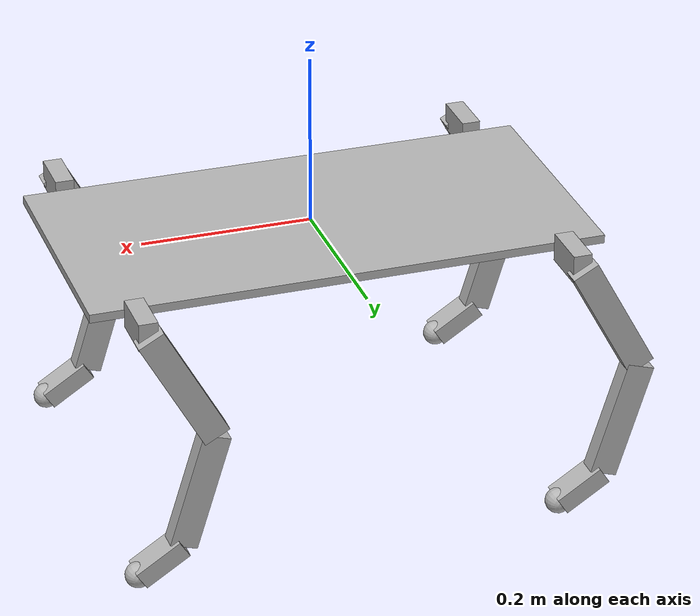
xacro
<?xml version="1.0"?>
<robot xmlns:xacro="http://ros.org/wiki/xacro" name="cuadrupedo">

    <!-- parameters -->
    <xacro:property name="pi" value="3.1415926535897931" />
    <xacro:property name="long_cuerpo_x" value="0.5" />
    <xacro:property name="long_cuerpo_y" value="0.3" />
    <xacro:property name="long_cuerpo_z" value="0.01" />
    <xacro:property name="long_coxa" value="0.05893" />
    <xacro:property name="long_femur" value="0.15" />
    <xacro:property name="long_tibia" value="0.14" />
    <xacro:property name="long_tarsus" value="0.06" />

    <xacro:property name="masa_base" value="10" />
    <xacro:property name="masa_tarsus" value="0.2" />
    <xacro:property name="masa_tibia" value="0.2" />
    <xacro:property name="masa_femur" value="0.2" />
    <xacro:property name="masa_coxa" value="0.2" />

    <macro name="box_inertia" params="m x y z">
    <inertia  ixx="${500*m*(y*y+z*z)/12}" ixy = "0" ixz = "0"
              iyy="${500*m*(x*x+z*z)/12}" iyz = "0"
              izz="${500*m*(x*x+z*z)/12}" />
    </macro>

    <!-- Build the body frame -->
    <link name="map" />

    <joint name="base_joint" type="fixed">
        <parent link="map" />
        <child link="base_link" />
        <origin xyz="0 0 0" rpy="0 0 0" />
    </joint>
    <link name="base_link">
		<inertial>
			<origin    xyz="0 0 0" rpy="0 0 0" />
			<mass value="${masa_base}" />
			<box_inertia  m="${masa_base}" x="${long_cuerpo_x}" y="${long_cuerpo_y}" z="${long_cuerpo_z}"/>
		</inertial>
        <visual>
        	<origin    xyz="0 0 0" rpy="0 0 0" />
        	<geometry>
        		<box size="${1.2*long_cuerpo_x} ${long_cuerpo_y} ${long_cuerpo_z}"/>
      		</geometry>
            <material name="">
            	<color rgba="0.7 0.7 0.7 1" />
            </material>
		</visual>
	    <collision>
     	   <origin    xyz="0 0 0" rpy="0 0 0" />
           <geometry>
			<box size="${long_cuerpo_x} ${long_cuerpo_y} 0.004"/>
           </geometry>
		</collision>
    </link>

    <!-- Joint properties -->
    <xacro:property name="lim_joint_inferior" value="-${3.14}" />
    <xacro:property name="lim_joint_superior" value="${3.14}" />
    <xacro:property name="max_esfu" value="10000" />
    <xacro:property name="max_vel" value="100" />

    <!-- Leg macro -->
    <xacro:macro name="leg" params="side position x y angle axis izq">

        <!-- leg position -->
    	<joint name="leg_center_joint_${side}${position}" type="fixed">
            <origin xyz="${x} ${y} 0" rpy="0 0 0" />
            <parent link="base_link" />
            <child link="leg_center_${side}${position}" />
        </joint>

        <link name="leg_center_${side}${position}">
			<inertial>
				<origin    xyz="0 0 0" rpy="0 0 0" />
				<mass value="${masa_base}" />
				<box_inertia  m="${masa_base}" x="${long_cuerpo_x}" y="${long_cuerpo_y}" z="${long_cuerpo_z}"/>
			</inertial>
		</link>

        <!-- coxa -->

		<xacro:if value="${izq}">
			<joint name="coxa_joint_${side}${position}" type="revolute">
            <origin xyz="0 0 0" rpy="0 0 ${-1*angle}" />
            <parent link="leg_center_${side}${position}" />
            <child link="coxa_${side}${position}" />
            <axis xyz="0 ${axis} 0" />
            <limit lower="${lim_joint_inferior}" upper="${lim_joint_superior}" effort="${max_esfu}" velocity="${max_vel}" />
        </joint>
		</xacro:if>

		<xacro:unless value="${izq}">
			<joint name="coxa_joint_${side}${position}" type="revolute">
            <origin xyz="0 0 0" rpy="0 0 ${angle}" />
            <parent link="leg_center_${side}${position}" />
            <child link="coxa_${side}${position}" />
            <axis xyz="0 ${axis} 0" />
            <limit lower="${lim_joint_inferior}" upper="${lim_joint_superior}" effort="${max_esfu}" velocity="${max_vel}" />
        </joint>
		</xacro:unless>

		<transmission name="coxa_joint_${side}${position}_Transmission">
			<type>transmission_interface/SimpleTransmission</type>
			<joint name="coxa_joint_${side}${position}">
				<hardwareInterface>EffortJointInterface</hardwareInterface>
			</joint>
			<actuator name="coxa_joint_${side}${position}_Motor">
				<hardwareInterface>EffortJointInterface</hardwareInterface>
				<mechanicalReduction>1</mechanicalReduction>
			</actuator>
		</transmission>
        <link name="coxa_${side}${position}">
	   		<inertial>
      			<origin xyz="0 0 0" rpy="0 0 0" />
      			<mass value="${masa_coxa}" />
      			<box_inertia  m="${masa_coxa}" x="${2*long_coxa}" y="0.022" z="0.0325"/>
    		</inertial>
            <visual>
                <origin xyz="${long_coxa/2} 0 0" rpy="0 0 0" />
            	<geometry>
                    <box size="${long_coxa} 0.022 0.0325" />
                </geometry>
                <material name="">
                    <color rgba="0.7 0.7 0.7 1" />
                </material>
            </visual>
			<collision>
 	           <origin xyz="${long_coxa/2} 0 0" rpy="0 0 0" />
               <geometry>
                    <box size="${long_coxa} 0.022 0.0325" />
               </geometry>
 		    </collision>
		</link>

        <!-- femur -->
		<xacro:if value="${izq}">
			<joint name="femur_joint_${side}${position}" type="revolute">
            <origin xyz="${long_coxa} 0 0" rpy="${pi/2+0.5} 0.0 0" />
            <parent link="coxa_${side}${position}" />
            <child link="femur_${side}${position}" />
            <axis xyz="${axis} 0 0" />
            <limit lower="${lim_joint_inferior}" upper="${lim_joint_superior}" effort="${max_esfu}" velocity="${max_vel}" />
        </joint>
		</xacro:if>

		<xacro:unless value="${izq}">
			<joint name="femur_joint_${side}${position}" type="revolute">
            <origin xyz="${long_coxa} 0 0" rpy="${pi/2-0.5} 0.0 0" />
            <parent link="coxa_${side}${position}" />
            <child link="femur_${side}${position}" />
            <axis xyz="${axis} 0 0" />
            <limit lower="${lim_joint_inferior}" upper="${lim_joint_superior}" effort="${max_esfu}" velocity="${max_vel}" />
        </joint>
		</xacro:unless>
		<transmission name="femur_joint_${side}${position}_Transmission">
			<type>transmission_interface/SimpleTransmission</type>
			<joint name="femur_joint_${side}${position}">
				<hardwareInterface>EffortJointInterface</hardwareInterface>
			</joint>
			<actuator name="femur_joint_${side}${position}_Motor">
				<hardwareInterface>EffortJointInterface</hardwareInterface>
				<mechanicalReduction>1</mechanicalReduction>
			</actuator>
		</transmission>
        <link name="femur_${side}${position}">
	   		<inertial>
      			<origin xyz="0 -${long_femur/2} 0" rpy="0 0 0" />
      			<mass value="${masa_femur}" />
      			<box_inertia  m="${masa_femur}" x="0.022" y="${long_femur}" z="0.0325"/>
    		</inertial>
            <visual>
                <origin xyz="0 -${long_femur/2} 0" rpy="0 0 0" />
                <geometry>
                    <box size="0.022 ${long_femur} 0.0325" />
                </geometry>
                <material name="">
                    <color rgba="0.7 0.7 0.7 1" />
                </material>
            </visual>
	    	<collision>
           		<origin xyz="0 -${long_femur/2} 0" rpy="0 0 0" />
                <geometry>
            	    <box size="0.022 ${long_femur} 0.0325" />
                </geometry>
      		</collision>
		</link>

        <!-- tibia -->
		<xacro:if value="${izq}">
			<joint name="tibia_joint_${side}${position}" type="revolute">
            <origin xyz="0 -${long_femur} 0" rpy="0 -0.8 -${pi/2}" />
            <parent link="femur_${side}${position}" />
            <child link="tibia_${side}${position}" />
            <axis xyz="0 ${axis} 0" />
            <limit lower="${lim_joint_inferior}" upper="${lim_joint_superior}" effort="${max_esfu}" velocity="${max_vel}" />
        </joint>
		</xacro:if>

		<xacro:unless value="${izq}">
			<joint name="tibia_joint_${side}${position}" type="revolute">
            <origin xyz="0 -${long_femur} 0" rpy="0 0.8 -${pi/2}" />
            <parent link="femur_${side}${position}" />
            <child link="tibia_${side}${position}" />
            <axis xyz="0 ${axis} 0" />
            <limit lower="${lim_joint_inferior}" upper="${lim_joint_superior}" effort="${max_esfu}" velocity="${max_vel}" />
        </joint>
		</xacro:unless>
		<transmission name="tibia_joint_${side}${position}_Transmission">
			<type>transmission_interface/SimpleTransmission</type>
			<joint name="tibia_joint_${side}${position}">
				<hardwareInterface>EffortJointInterface</hardwareInterface>
			</joint>
			<actuator name="tibia_joint_${side}${position}_Motor">
				<hardwareInterface>EffortJointInterface</hardwareInterface>
				<mechanicalReduction>1</mechanicalReduction>
			</actuator>
		</transmission>
        <link name="tibia_${side}${position}">
	    	<inertial>
      			<origin xyz="${long_tibia/2} 0 0" rpy="0 0 0" />
      			<mass value="${masa_tibia}" />
      			<box_inertia  m="${masa_tibia}" x="${long_tibia}" y="0.022" z="0.0325"/>
    		</inertial>
            <visual>
                <origin xyz="${long_tibia/2} 0 0" rpy="0 0 0" />
                  <geometry>
                    <box size="${long_tibia} 0.022 0.0325" />
                  </geometry>
                <material name="">
                    <color rgba="0.7 0.7 0.7 1" />
                </material>
            </visual>
	    	<collision>
           		<origin xyz="${long_tibia/2} 0 0" rpy="0 0 0" />
                <geometry>
                	<box size="${long_tibia} 0.022 0.0325" />
                </geometry>
      		</collision>
        </link>

        <!-- tarsus -->

		<xacro:if value="${izq}">
			<joint name="tarsus_joint_${side}${position}" type="revolute">
            <origin xyz="${long_tibia} 0 0" rpy="-${pi/2} -0.7 0" />
            <parent link="tibia_${side}${position}" />
            <child link="tarsus_${side}${position}" />
            <axis xyz="0 0 -${axis}" />
            <limit lower="${lim_joint_inferior}" upper="${lim_joint_superior}" effort="${max_esfu}" velocity="${max_vel}" />
        </joint>
		</xacro:if>

		<xacro:unless value="${izq}">
			<joint name="tarsus_joint_${side}${position}" type="revolute">
            <origin xyz="${long_tibia} 0 0" rpy="-${pi/2} 0.7 0" />
            <parent link="tibia_${side}${position}" />
            <child link="tarsus_${side}${position}" />
            <axis xyz="0 0 ${axis}" />
            <limit lower="${lim_joint_inferior}" upper="${lim_joint_superior}" effort="${max_esfu}" velocity="${max_vel}" />
        </joint>
		</xacro:unless>

		<transmission name="tarsus_joint_${side}${position}_Transmission">
			<type>transmission_interface/SimpleTransmission</type>
			<joint name="tarsus_joint_${side}${position}">
				<hardwareInterface>EffortJointInterface</hardwareInterface>
			</joint>
			<actuator name="tarsus_joint_${side}${position}_Motor">
				<hardwareInterface>EffortJointInterface</hardwareInterface>
				<mechanicalReduction>1</mechanicalReduction>
			</actuator>
		</transmission>

        <link name="tarsus_${side}${position}">
	    	<inertial>
      			<origin xyz="${long_tarsus/2} 0 0" rpy="0 0 0" />
      			<mass value="${masa_tarsus}" />
      			<box_inertia  m="${masa_tarsus}" x="${long_tarsus}" y="0.022" z="0.0325"/>
    		</inertial>
            <visual>
                <origin xyz="${long_tarsus/2} 0 0" rpy="0 0 0" />
                  <geometry>
                    <box size="${long_tarsus} 0.022 0.0325" />
                  </geometry>
                <material name="">
                    <color rgba="0.7 0.7 0.7 1" />
                </material>
            </visual>
			<visual>
                <origin xyz="${long_tarsus} 0 0" rpy="0 0 0" />
                  <geometry>
                    <sphere radius="0.015"/>
                  </geometry>
                <material name="">
                    <color rgba="0.7 0.7 0.7 1" />
                </material>
            </visual>
	    	<collision>
           		<origin xyz="${long_tarsus/2} 0 0" rpy="0 0 0" />
                	<geometry>
                	    <box size="${long_tarsus} 0.022 0.0325" />
                	</geometry>
      		</collision>
			<collision>
           		<origin xyz="${long_tarsus} 0 0" rpy="0 0 0" />
                	<geometry>
                	    <sphere radius="0.015"/>
                	</geometry>
      		</collision>
        </link>

		<gazebo reference="tarsus_${side}${position}">
  			<mu1 value="10000.0"/>
  			<mu2 value="10000.0"/>
  			<kp  value="1000000.0" />
  			<kd  value="10.0" />
    		<maxContacts>20</maxContacts>
		</gazebo>

    </xacro:macro>

	<gazebo>
        <plugin filename="libgazebo_ros_control.so" name="gazebo_ros_control">
            <robotNamespace>/cuadrupedo</robotNamespace>
            <robotSimType>gazebo_ros_control/DefaultRobotHWSim</robotSimType>
        </plugin>
    </gazebo>

<!-- Build robot model -->
    <xacro:leg side="R" position="R" x="${long_cuerpo_x/2}" y="-${long_cuerpo_y/2}" angle="-${pi/2}" axis="1" izq="0" />
    <xacro:leg side="R" position="F" x="-${long_cuerpo_x/2}" y="-${long_cuerpo_y/2}" angle="-${pi/2}" axis="1" izq="0"/>
    <xacro:leg side="L" position="R" x="${long_cuerpo_x/2}" y="${long_cuerpo_y/2}" angle="-${pi/2}" axis="1" izq="1"/>
    <xacro:leg side="L" position="F" x="-${long_cuerpo_x/2}" y="${long_cuerpo_y/2}" angle="-${pi/2}" axis="1" izq="1"/>

</robot>
